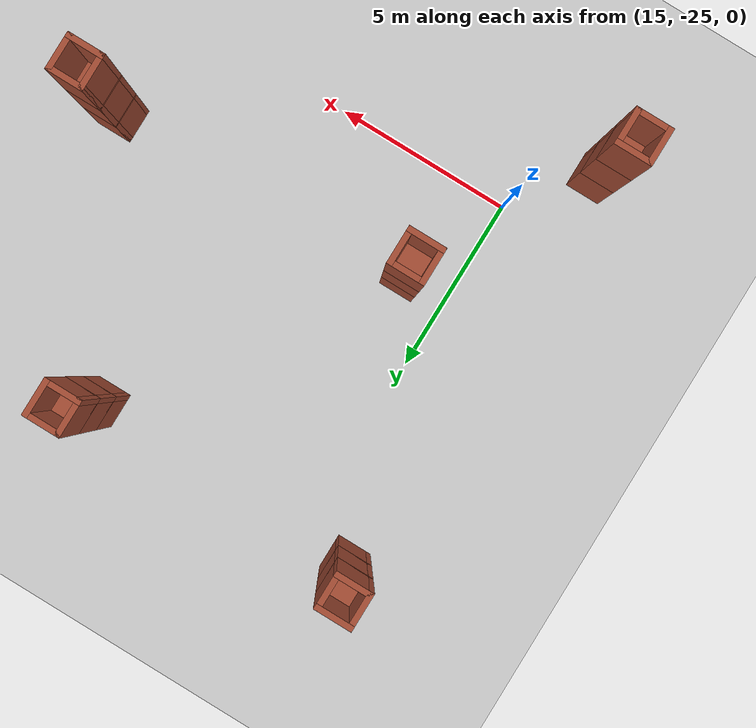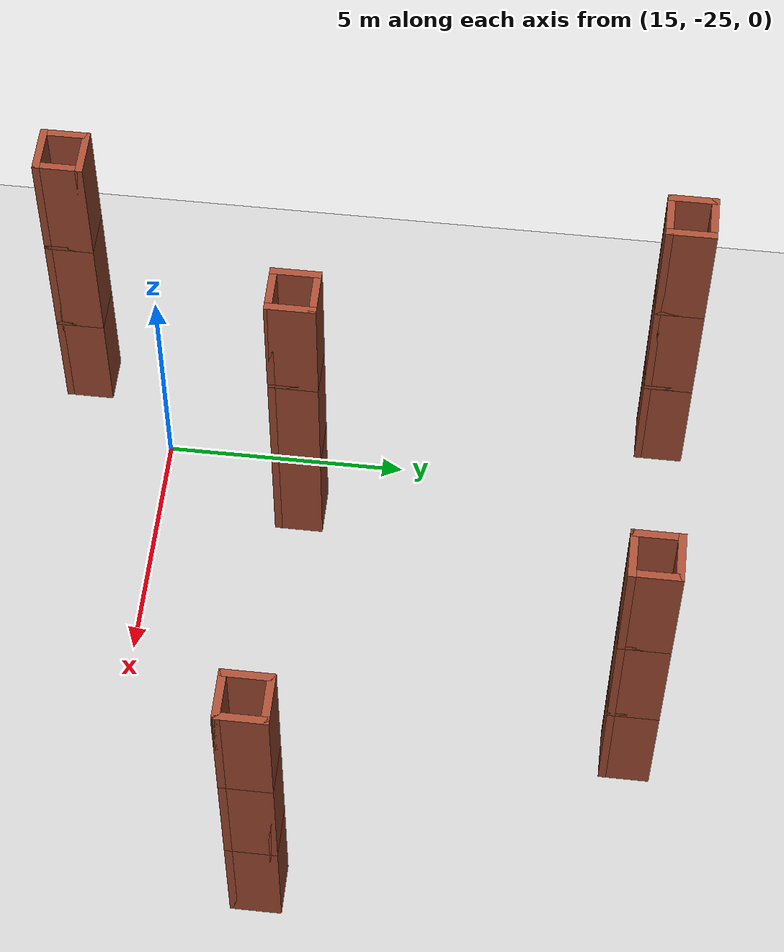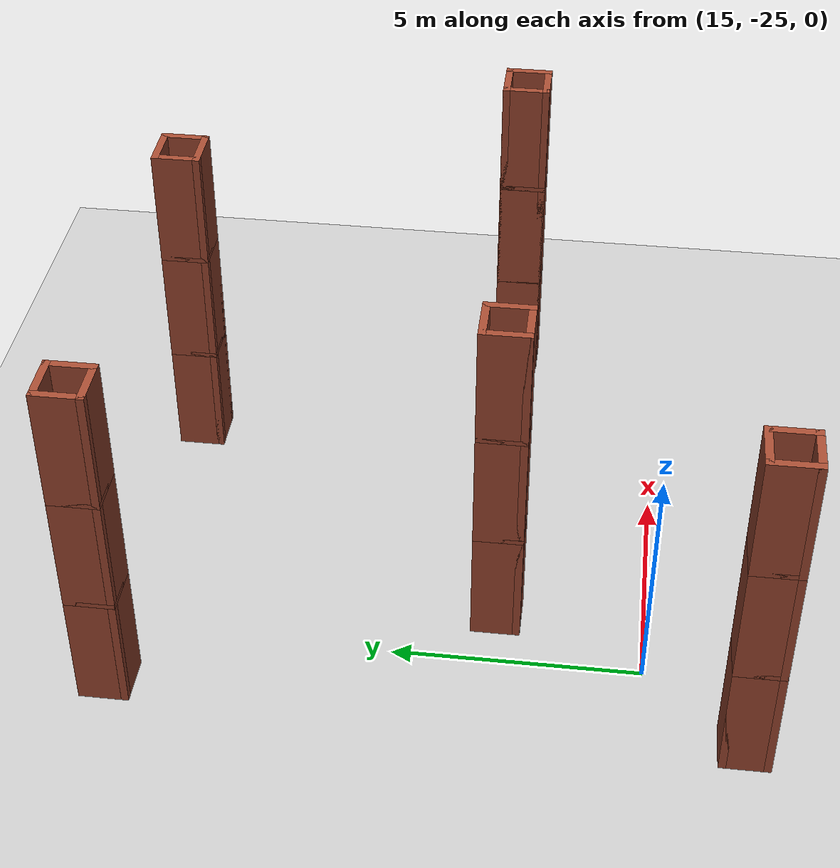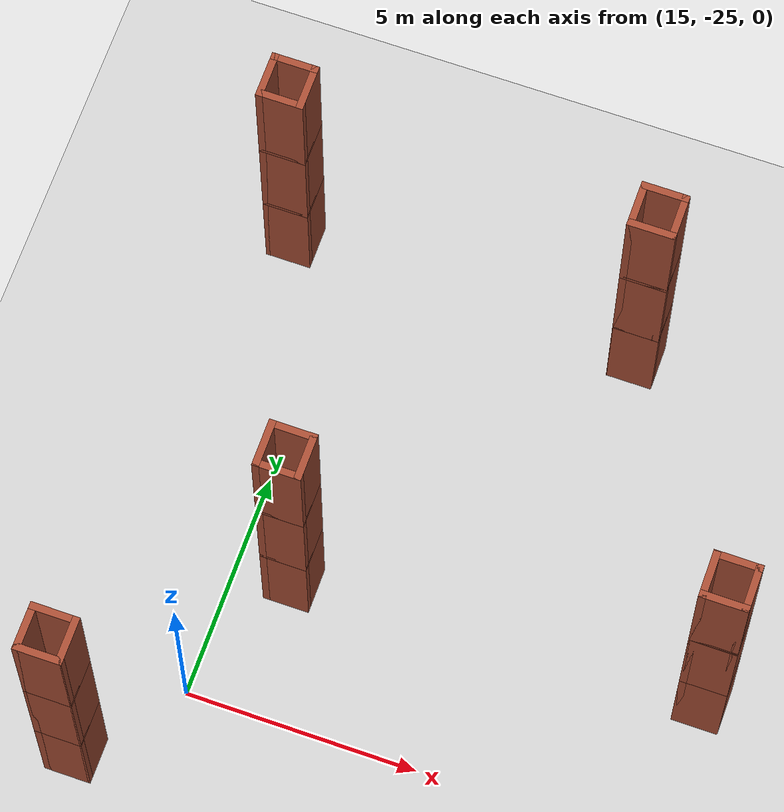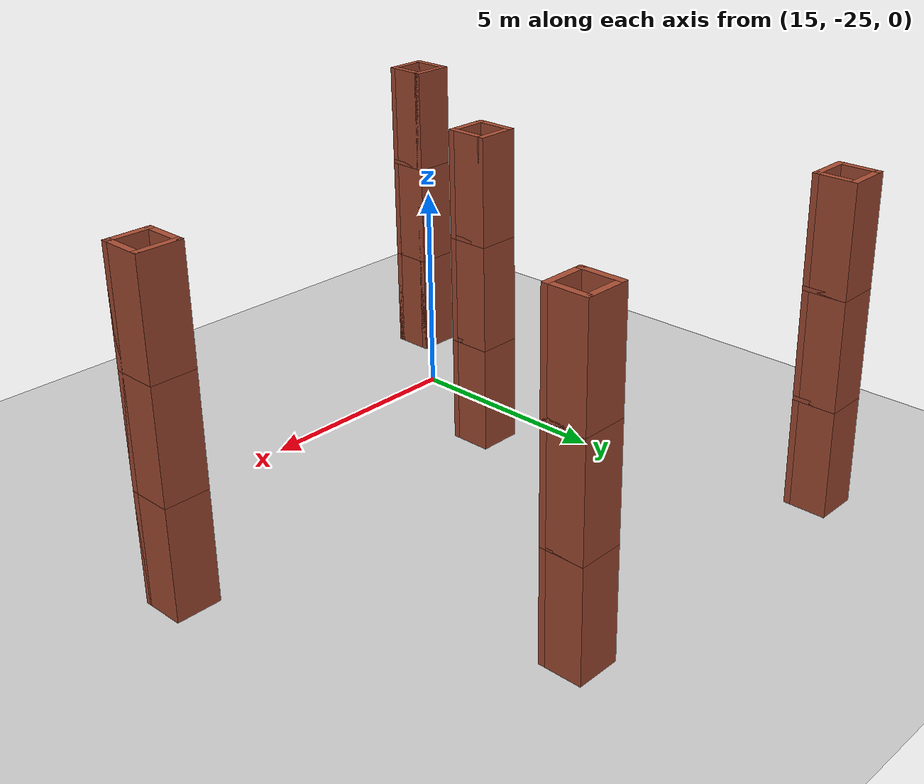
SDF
<sdf version="1.7">
 <world name="default">
  <model name="ground_plane">
   <static>1</static>
   <link name="link">
    <collision name="collision">
     <geometry><plane><normal>0 0 1</normal><size>100 100</size></plane></geometry>
     <surface>
      <contact><collide_bitmask>65535</collide_bitmask></contact>
      <friction><ode><mu>100</mu><mu2>50</mu2></ode></friction>
     </surface>
    </collision>
    <visual name="visual">
     <cast_shadows>0</cast_shadows>
     <geometry><plane><normal>0 0 1</normal><size>100 100</size></plane></geometry>
     <material>
      <script><uri>file://media/materials/scripts/gazebo.material</uri><name>Gazebo/Grey</name></script>
     </material>
    </visual>
   </link>
  </model>
  <model name="wall_model_clone_9">
   <pose>16.5346 -27.5801 0 0 -0 0</pose>
   <link name="Floor_3">
    <collision name="Floor_3_Collision">
     <geometry><box><size>1 1 0.1</size></box></geometry>
     <pose>0 0 0.05 0 -0 0</pose>
    </collision>
    <visual name="Floor_3_Visual">
     <pose>0 0 0.05 0 -0 0</pose>
     <geometry><box><size>1 1 0.1</size></box></geometry>
     <material>
      <script><uri>file://media/materials/scripts/gazebo.material</uri><name>Gazebo/Bricks</name></script>
      <ambient>1 1 1 1</ambient>
     </material>
     <meta><layer>1</layer></meta>
    </visual>
    <pose>-3.21504 0.623396 2.5 0 -0 0</pose>
   </link>
   <link name="Floor_4">
    <collision name="Floor_4_Collision">
     <geometry><box><size>1 1 0.1</size></box></geometry>
     <pose>0 0 0.05 0 -0 0</pose>
    </collision>
    <visual name="Floor_4_Visual">
     <pose>0 0 0.05 0 -0 0</pose>
     <geometry><box><size>1 1 0.1</size></box></geometry>
     <material>
      <script><uri>file://media/materials/scripts/gazebo.material</uri><name>Gazebo/Bricks</name></script>
      <ambient>1 1 1 1</ambient>
     </material>
     <meta><layer>2</layer></meta>
    </visual>
    <pose>-3.21504 0.623396 5 0 -0 0</pose>
   </link>
   <link name="Wall_19">
    <collision name="Wall_19_Collision">
     <geometry><box><size>1 0.15 2.5</size></box></geometry>
     <pose>0 0 1.25 0 -0 0</pose>
    </collision>
    <visual name="Wall_19_Visual">
     <pose>0 0 1.25 0 -0 0</pose>
     <geometry><box><size>1 0.15 2.5</size></box></geometry>
     <material>
      <script><uri>file://media/materials/scripts/gazebo.material</uri><name>Gazebo/Bricks</name></script>
      <ambient>1 1 1 1</ambient>
     </material>
     <meta><layer>0</layer></meta>
    </visual>
    <pose>-3.64004 0.623396 0 0 -0 1.5708</pose>
   </link>
   <link name="Wall_21">
    <collision name="Wall_21_Collision">
     <geometry><box><size>1 0.15 2.5</size></box></geometry>
     <pose>0 0 1.25 0 -0 0</pose>
    </collision>
    <visual name="Wall_21_Visual">
     <pose>0 0 1.25 0 -0 0</pose>
     <geometry><box><size>1 0.15 2.5</size></box></geometry>
     <material>
      <script><uri>file://media/materials/scripts/gazebo.material</uri><name>Gazebo/Bricks</name></script>
      <ambient>1 1 1 1</ambient>
     </material>
     <meta><layer>0</layer></meta>
    </visual>
    <pose>-3.21504 1.0484 0 0 -0 0</pose>
   </link>
   <link name="Wall_22">
    <collision name="Wall_22_Collision">
     <geometry><box><size>1 0.15 2.5</size></box></geometry>
     <pose>0 0 1.25 0 -0 0</pose>
    </collision>
    <visual name="Wall_22_Visual">
     <pose>0 0 1.25 0 -0 0</pose>
     <geometry><box><size>1 0.15 2.5</size></box></geometry>
     <material>
      <script><uri>file://media/materials/scripts/gazebo.material</uri><name>Gazebo/Bricks</name></script>
      <ambient>1 1 1 1</ambient>
     </material>
     <meta><layer>0</layer></meta>
    </visual>
    <pose>-2.79004 0.623396 0 0 -0 -1.5708</pose>
   </link>
   <link name="Wall_23">
    <collision name="Wall_23_Collision">
     <geometry><box><size>1 0.15 2.5</size></box></geometry>
     <pose>0 0 1.25 0 -0 0</pose>
    </collision>
    <visual name="Wall_23_Visual">
     <pose>0 0 1.25 0 -0 0</pose>
     <geometry><box><size>1 0.15 2.5</size></box></geometry>
     <material>
      <script><uri>file://media/materials/scripts/gazebo.material</uri><name>Gazebo/Bricks</name></script>
      <ambient>1 1 1 1</ambient>
     </material>
     <meta><layer>0</layer></meta>
    </visual>
    <pose>-3.21504 0.198396 0 0 -0 3.14159</pose>
   </link>
   <link name="Wall_25">
    <collision name="Wall_25_Collision">
     <geometry><box><size>1 0.15 2.5</size></box></geometry>
     <pose>0 0 1.25 0 -0 0</pose>
    </collision>
    <visual name="Wall_25_Visual">
     <pose>0 0 1.25 0 -0 0</pose>
     <geometry><box><size>1 0.15 2.5</size></box></geometry>
     <material>
      <script><uri>file://media/materials/scripts/gazebo.material</uri><name>Gazebo/Bricks</name></script>
      <ambient>1 1 1 1</ambient>
     </material>
     <meta><layer>1</layer></meta>
    </visual>
    <pose>-3.64004 0.623396 2.5 0 -0 1.5708</pose>
   </link>
   <link name="Wall_26">
    <collision name="Wall_26_Collision">
     <geometry><box><size>1 0.15 2.5</size></box></geometry>
     <pose>0 0 1.25 0 -0 0</pose>
    </collision>
    <visual name="Wall_26_Visual">
     <pose>0 0 1.25 0 -0 0</pose>
     <geometry><box><size>1 0.15 2.5</size></box></geometry>
     <material>
      <script><uri>file://media/materials/scripts/gazebo.material</uri><name>Gazebo/Bricks</name></script>
      <ambient>1 1 1 1</ambient>
     </material>
     <meta><layer>1</layer></meta>
    </visual>
    <pose>-3.21504 1.0484 2.5 0 -0 0</pose>
   </link>
   <link name="Wall_27">
    <collision name="Wall_27_Collision">
     <geometry><box><size>1 0.15 2.5</size></box></geometry>
     <pose>0 0 1.25 0 -0 0</pose>
    </collision>
    <visual name="Wall_27_Visual">
     <pose>0 0 1.25 0 -0 0</pose>
     <geometry><box><size>1 0.15 2.5</size></box></geometry>
     <material>
      <script><uri>file://media/materials/scripts/gazebo.material</uri><name>Gazebo/Bricks</name></script>
      <ambient>1 1 1 1</ambient>
     </material>
     <meta><layer>1</layer></meta>
    </visual>
    <pose>-2.79004 0.623396 2.5 0 -0 -1.5708</pose>
   </link>
   <link name="Wall_28">
    <collision name="Wall_28_Collision">
     <geometry><box><size>1 0.15 2.5</size></box></geometry>
     <pose>0 0 1.25 0 -0 0</pose>
    </collision>
    <visual name="Wall_28_Visual">
     <pose>0 0 1.25 0 -0 0</pose>
     <geometry><box><size>1 0.15 2.5</size></box></geometry>
     <material>
      <script><uri>file://media/materials/scripts/gazebo.material</uri><name>Gazebo/Bricks</name></script>
      <ambient>1 1 1 1</ambient>
     </material>
     <meta><layer>1</layer></meta>
    </visual>
    <pose>-3.21504 0.198396 2.5 0 -0 3.14159</pose>
   </link>
   <link name="Wall_29">
    <collision name="Wall_29_Collision">
     <geometry><box><size>1 0.15 2.5</size></box></geometry>
     <pose>0 0 1.25 0 -0 0</pose>
    </collision>
    <visual name="Wall_29_Visual">
     <pose>0 0 1.25 0 -0 0</pose>
     <geometry><box><size>1 0.15 2.5</size></box></geometry>
     <material>
      <script><uri>file://media/materials/scripts/gazebo.material</uri><name>Gazebo/Bricks</name></script>
      <ambient>1 1 1 1</ambient>
     </material>
     <meta><layer>2</layer></meta>
    </visual>
    <pose>-3.64004 0.623396 5 0 -0 1.5708</pose>
   </link>
   <link name="Wall_30">
    <collision name="Wall_30_Collision">
     <geometry><box><size>1 0.15 2.5</size></box></geometry>
     <pose>0 0 1.25 0 -0 0</pose>
    </collision>
    <visual name="Wall_30_Visual">
     <pose>0 0 1.25 0 -0 0</pose>
     <geometry><box><size>1 0.15 2.5</size></box></geometry>
     <material>
      <script><uri>file://media/materials/scripts/gazebo.material</uri><name>Gazebo/Bricks</name></script>
      <ambient>1 1 1 1</ambient>
     </material>
     <meta><layer>2</layer></meta>
    </visual>
    <pose>-3.21504 1.0484 5 0 -0 0</pose>
   </link>
   <link name="Wall_31">
    <collision name="Wall_31_Collision">
     <geometry><box><size>1 0.15 2.5</size></box></geometry>
     <pose>0 0 1.25 0 -0 0</pose>
    </collision>
    <visual name="Wall_31_Visual">
     <pose>0 0 1.25 0 -0 0</pose>
     <geometry><box><size>1 0.15 2.5</size></box></geometry>
     <material>
      <script><uri>file://media/materials/scripts/gazebo.material</uri><name>Gazebo/Bricks</name></script>
      <ambient>1 1 1 1</ambient>
     </material>
     <meta><layer>2</layer></meta>
    </visual>
    <pose>-2.79004 0.623396 5 0 -0 -1.5708</pose>
   </link>
   <link name="Wall_32">
    <collision name="Wall_32_Collision">
     <geometry><box><size>1 0.15 2.5</size></box></geometry>
     <pose>0 0 1.25 0 -0 0</pose>
    </collision>
    <visual name="Wall_32_Visual">
     <pose>0 0 1.25 0 -0 0</pose>
     <geometry><box><size>1 0.15 2.5</size></box></geometry>
     <material>
      <script><uri>file://media/materials/scripts/gazebo.material</uri><name>Gazebo/Bricks</name></script>
      <ambient>1 1 1 1</ambient>
     </material>
     <meta><layer>2</layer></meta>
    </visual>
    <pose>-3.21504 0.198396 5 0 -0 3.14159</pose>
   </link>
   <static>1</static>
  </model>
  <model name="wall_model_clone_10">
   <pose>19.4753 -22.6273 0 0 -0 0</pose>
   <link name="Floor_3">
    <collision name="Floor_3_Collision">
     <geometry><box><size>1 1 0.1</size></box></geometry>
     <pose>0 0 0.05 0 -0 0</pose>
    </collision>
    <visual name="Floor_3_Visual">
     <pose>0 0 0.05 0 -0 0</pose>
     <geometry><box><size>1 1 0.1</size></box></geometry>
     <material>
      <script><uri>file://media/materials/scripts/gazebo.material</uri><name>Gazebo/Bricks</name></script>
      <ambient>1 1 1 1</ambient>
     </material>
     <meta><layer>1</layer></meta>
    </visual>
    <pose>-3.21504 0.623396 2.5 0 -0 0</pose>
   </link>
   <link name="Floor_4">
    <collision name="Floor_4_Collision">
     <geometry><box><size>1 1 0.1</size></box></geometry>
     <pose>0 0 0.05 0 -0 0</pose>
    </collision>
    <visual name="Floor_4_Visual">
     <pose>0 0 0.05 0 -0 0</pose>
     <geometry><box><size>1 1 0.1</size></box></geometry>
     <material>
      <script><uri>file://media/materials/scripts/gazebo.material</uri><name>Gazebo/Bricks</name></script>
      <ambient>1 1 1 1</ambient>
     </material>
     <meta><layer>2</layer></meta>
    </visual>
    <pose>-3.21504 0.623396 5 0 -0 0</pose>
   </link>
   <link name="Wall_19">
    <collision name="Wall_19_Collision">
     <geometry><box><size>1 0.15 2.5</size></box></geometry>
     <pose>0 0 1.25 0 -0 0</pose>
    </collision>
    <visual name="Wall_19_Visual">
     <pose>0 0 1.25 0 -0 0</pose>
     <geometry><box><size>1 0.15 2.5</size></box></geometry>
     <material>
      <script><uri>file://media/materials/scripts/gazebo.material</uri><name>Gazebo/Bricks</name></script>
      <ambient>1 1 1 1</ambient>
     </material>
     <meta><layer>0</layer></meta>
    </visual>
    <pose>-3.64004 0.623396 0 0 -0 1.5708</pose>
   </link>
   <link name="Wall_21">
    <collision name="Wall_21_Collision">
     <geometry><box><size>1 0.15 2.5</size></box></geometry>
     <pose>0 0 1.25 0 -0 0</pose>
    </collision>
    <visual name="Wall_21_Visual">
     <pose>0 0 1.25 0 -0 0</pose>
     <geometry><box><size>1 0.15 2.5</size></box></geometry>
     <material>
      <script><uri>file://media/materials/scripts/gazebo.material</uri><name>Gazebo/Bricks</name></script>
      <ambient>1 1 1 1</ambient>
     </material>
     <meta><layer>0</layer></meta>
    </visual>
    <pose>-3.21504 1.0484 0 0 -0 0</pose>
   </link>
   <link name="Wall_22">
    <collision name="Wall_22_Collision">
     <geometry><box><size>1 0.15 2.5</size></box></geometry>
     <pose>0 0 1.25 0 -0 0</pose>
    </collision>
    <visual name="Wall_22_Visual">
     <pose>0 0 1.25 0 -0 0</pose>
     <geometry><box><size>1 0.15 2.5</size></box></geometry>
     <material>
      <script><uri>file://media/materials/scripts/gazebo.material</uri><name>Gazebo/Bricks</name></script>
      <ambient>1 1 1 1</ambient>
     </material>
     <meta><layer>0</layer></meta>
    </visual>
    <pose>-2.79004 0.623396 0 0 -0 -1.5708</pose>
   </link>
   <link name="Wall_23">
    <collision name="Wall_23_Collision">
     <geometry><box><size>1 0.15 2.5</size></box></geometry>
     <pose>0 0 1.25 0 -0 0</pose>
    </collision>
    <visual name="Wall_23_Visual">
     <pose>0 0 1.25 0 -0 0</pose>
     <geometry><box><size>1 0.15 2.5</size></box></geometry>
     <material>
      <script><uri>file://media/materials/scripts/gazebo.material</uri><name>Gazebo/Bricks</name></script>
      <ambient>1 1 1 1</ambient>
     </material>
     <meta><layer>0</layer></meta>
    </visual>
    <pose>-3.21504 0.198396 0 0 -0 3.14159</pose>
   </link>
   <link name="Wall_25">
    <collision name="Wall_25_Collision">
     <geometry><box><size>1 0.15 2.5</size></box></geometry>
     <pose>0 0 1.25 0 -0 0</pose>
    </collision>
    <visual name="Wall_25_Visual">
     <pose>0 0 1.25 0 -0 0</pose>
     <geometry><box><size>1 0.15 2.5</size></box></geometry>
     <material>
      <script><uri>file://media/materials/scripts/gazebo.material</uri><name>Gazebo/Bricks</name></script>
      <ambient>1 1 1 1</ambient>
     </material>
     <meta><layer>1</layer></meta>
    </visual>
    <pose>-3.64004 0.623396 2.5 0 -0 1.5708</pose>
   </link>
   <link name="Wall_26">
    <collision name="Wall_26_Collision">
     <geometry><box><size>1 0.15 2.5</size></box></geometry>
     <pose>0 0 1.25 0 -0 0</pose>
    </collision>
    <visual name="Wall_26_Visual">
     <pose>0 0 1.25 0 -0 0</pose>
     <geometry><box><size>1 0.15 2.5</size></box></geometry>
     <material>
      <script><uri>file://media/materials/scripts/gazebo.material</uri><name>Gazebo/Bricks</name></script>
      <ambient>1 1 1 1</ambient>
     </material>
     <meta><layer>1</layer></meta>
    </visual>
    <pose>-3.21504 1.0484 2.5 0 -0 0</pose>
   </link>
   <link name="Wall_27">
    <collision name="Wall_27_Collision">
     <geometry><box><size>1 0.15 2.5</size></box></geometry>
     <pose>0 0 1.25 0 -0 0</pose>
    </collision>
    <visual name="Wall_27_Visual">
     <pose>0 0 1.25 0 -0 0</pose>
     <geometry><box><size>1 0.15 2.5</size></box></geometry>
     <material>
      <script><uri>file://media/materials/scripts/gazebo.material</uri><name>Gazebo/Bricks</name></script>
      <ambient>1 1 1 1</ambient>
     </material>
     <meta><layer>1</layer></meta>
    </visual>
    <pose>-2.79004 0.623396 2.5 0 -0 -1.5708</pose>
   </link>
   <link name="Wall_28">
    <collision name="Wall_28_Collision">
     <geometry><box><size>1 0.15 2.5</size></box></geometry>
     <pose>0 0 1.25 0 -0 0</pose>
    </collision>
    <visual name="Wall_28_Visual">
     <pose>0 0 1.25 0 -0 0</pose>
     <geometry><box><size>1 0.15 2.5</size></box></geometry>
     <material>
      <script><uri>file://media/materials/scripts/gazebo.material</uri><name>Gazebo/Bricks</name></script>
      <ambient>1 1 1 1</ambient>
     </material>
     <meta><layer>1</layer></meta>
    </visual>
    <pose>-3.21504 0.198396 2.5 0 -0 3.14159</pose>
   </link>
   <link name="Wall_29">
    <collision name="Wall_29_Collision">
     <geometry><box><size>1 0.15 2.5</size></box></geometry>
     <pose>0 0 1.25 0 -0 0</pose>
    </collision>
    <visual name="Wall_29_Visual">
     <pose>0 0 1.25 0 -0 0</pose>
     <geometry><box><size>1 0.15 2.5</size></box></geometry>
     <material>
      <script><uri>file://media/materials/scripts/gazebo.material</uri><name>Gazebo/Bricks</name></script>
      <ambient>1 1 1 1</ambient>
     </material>
     <meta><layer>2</layer></meta>
    </visual>
    <pose>-3.64004 0.623396 5 0 -0 1.5708</pose>
   </link>
   <link name="Wall_30">
    <collision name="Wall_30_Collision">
     <geometry><box><size>1 0.15 2.5</size></box></geometry>
     <pose>0 0 1.25 0 -0 0</pose>
    </collision>
    <visual name="Wall_30_Visual">
     <pose>0 0 1.25 0 -0 0</pose>
     <geometry><box><size>1 0.15 2.5</size></box></geometry>
     <material>
      <script><uri>file://media/materials/scripts/gazebo.material</uri><name>Gazebo/Bricks</name></script>
      <ambient>1 1 1 1</ambient>
     </material>
     <meta><layer>2</layer></meta>
    </visual>
    <pose>-3.21504 1.0484 5 0 -0 0</pose>
   </link>
   <link name="Wall_31">
    <collision name="Wall_31_Collision">
     <geometry><box><size>1 0.15 2.5</size></box></geometry>
     <pose>0 0 1.25 0 -0 0</pose>
    </collision>
    <visual name="Wall_31_Visual">
     <pose>0 0 1.25 0 -0 0</pose>
     <geometry><box><size>1 0.15 2.5</size></box></geometry>
     <material>
      <script><uri>file://media/materials/scripts/gazebo.material</uri><name>Gazebo/Bricks</name></script>
      <ambient>1 1 1 1</ambient>
     </material>
     <meta><layer>2</layer></meta>
    </visual>
    <pose>-2.79004 0.623396 5 0 -0 -1.5708</pose>
   </link>
   <link name="Wall_32">
    <collision name="Wall_32_Collision">
     <geometry><box><size>1 0.15 2.5</size></box></geometry>
     <pose>0 0 1.25 0 -0 0</pose>
    </collision>
    <visual name="Wall_32_Visual">
     <pose>0 0 1.25 0 -0 0</pose>
     <geometry><box><size>1 0.15 2.5</size></box></geometry>
     <material>
      <script><uri>file://media/materials/scripts/gazebo.material</uri><name>Gazebo/Bricks</name></script>
      <ambient>1 1 1 1</ambient>
     </material>
     <meta><layer>2</layer></meta>
    </visual>
    <pose>-3.21504 0.198396 5 0 -0 3.14159</pose>
   </link>
   <static>1</static>
  </model>
  <model name="wall_model_clone_18">
   <pose>24.6277 -15.4704 0 0 -0 0</pose>
   <link name="Floor_3">
    <collision name="Floor_3_Collision">
     <geometry><box><size>1 1 0.1</size></box></geometry>
     <pose>0 0 0.05 0 -0 0</pose>
    </collision>
    <visual name="Floor_3_Visual">
     <pose>0 0 0.05 0 -0 0</pose>
     <geometry><box><size>1 1 0.1</size></box></geometry>
     <material>
      <script><uri>file://media/materials/scripts/gazebo.material</uri><name>Gazebo/Bricks</name></script>
      <ambient>1 1 1 1</ambient>
     </material>
     <meta><layer>1</layer></meta>
    </visual>
    <pose>-3.21504 0.623396 2.5 0 -0 0</pose>
   </link>
   <link name="Floor_4">
    <collision name="Floor_4_Collision">
     <geometry><box><size>1 1 0.1</size></box></geometry>
     <pose>0 0 0.05 0 -0 0</pose>
    </collision>
    <visual name="Floor_4_Visual">
     <pose>0 0 0.05 0 -0 0</pose>
     <geometry><box><size>1 1 0.1</size></box></geometry>
     <material>
      <script><uri>file://media/materials/scripts/gazebo.material</uri><name>Gazebo/Bricks</name></script>
      <ambient>1 1 1 1</ambient>
     </material>
     <meta><layer>2</layer></meta>
    </visual>
    <pose>-3.21504 0.623396 5 0 -0 0</pose>
   </link>
   <link name="Wall_19">
    <collision name="Wall_19_Collision">
     <geometry><box><size>1 0.15 2.5</size></box></geometry>
     <pose>0 0 1.25 0 -0 0</pose>
    </collision>
    <visual name="Wall_19_Visual">
     <pose>0 0 1.25 0 -0 0</pose>
     <geometry><box><size>1 0.15 2.5</size></box></geometry>
     <material>
      <script><uri>file://media/materials/scripts/gazebo.material</uri><name>Gazebo/Bricks</name></script>
      <ambient>1 1 1 1</ambient>
     </material>
     <meta><layer>0</layer></meta>
    </visual>
    <pose>-3.64004 0.623396 0 0 -0 1.5708</pose>
   </link>
   <link name="Wall_21">
    <collision name="Wall_21_Collision">
     <geometry><box><size>1 0.15 2.5</size></box></geometry>
     <pose>0 0 1.25 0 -0 0</pose>
    </collision>
    <visual name="Wall_21_Visual">
     <pose>0 0 1.25 0 -0 0</pose>
     <geometry><box><size>1 0.15 2.5</size></box></geometry>
     <material>
      <script><uri>file://media/materials/scripts/gazebo.material</uri><name>Gazebo/Bricks</name></script>
      <ambient>1 1 1 1</ambient>
     </material>
     <meta><layer>0</layer></meta>
    </visual>
    <pose>-3.21504 1.0484 0 0 -0 0</pose>
   </link>
   <link name="Wall_22">
    <collision name="Wall_22_Collision">
     <geometry><box><size>1 0.15 2.5</size></box></geometry>
     <pose>0 0 1.25 0 -0 0</pose>
    </collision>
    <visual name="Wall_22_Visual">
     <pose>0 0 1.25 0 -0 0</pose>
     <geometry><box><size>1 0.15 2.5</size></box></geometry>
     <material>
      <script><uri>file://media/materials/scripts/gazebo.material</uri><name>Gazebo/Bricks</name></script>
      <ambient>1 1 1 1</ambient>
     </material>
     <meta><layer>0</layer></meta>
    </visual>
    <pose>-2.79004 0.623396 0 0 -0 -1.5708</pose>
   </link>
   <link name="Wall_23">
    <collision name="Wall_23_Collision">
     <geometry><box><size>1 0.15 2.5</size></box></geometry>
     <pose>0 0 1.25 0 -0 0</pose>
    </collision>
    <visual name="Wall_23_Visual">
     <pose>0 0 1.25 0 -0 0</pose>
     <geometry><box><size>1 0.15 2.5</size></box></geometry>
     <material>
      <script><uri>file://media/materials/scripts/gazebo.material</uri><name>Gazebo/Bricks</name></script>
      <ambient>1 1 1 1</ambient>
     </material>
     <meta><layer>0</layer></meta>
    </visual>
    <pose>-3.21504 0.198396 0 0 -0 3.14159</pose>
   </link>
   <link name="Wall_25">
    <collision name="Wall_25_Collision">
     <geometry><box><size>1 0.15 2.5</size></box></geometry>
     <pose>0 0 1.25 0 -0 0</pose>
    </collision>
    <visual name="Wall_25_Visual">
     <pose>0 0 1.25 0 -0 0</pose>
     <geometry><box><size>1 0.15 2.5</size></box></geometry>
     <material>
      <script><uri>file://media/materials/scripts/gazebo.material</uri><name>Gazebo/Bricks</name></script>
      <ambient>1 1 1 1</ambient>
     </material>
     <meta><layer>1</layer></meta>
    </visual>
    <pose>-3.64004 0.623396 2.5 0 -0 1.5708</pose>
   </link>
   <link name="Wall_26">
    <collision name="Wall_26_Collision">
     <geometry><box><size>1 0.15 2.5</size></box></geometry>
     <pose>0 0 1.25 0 -0 0</pose>
    </collision>
    <visual name="Wall_26_Visual">
     <pose>0 0 1.25 0 -0 0</pose>
     <geometry><box><size>1 0.15 2.5</size></box></geometry>
     <material>
      <script><uri>file://media/materials/scripts/gazebo.material</uri><name>Gazebo/Bricks</name></script>
      <ambient>1 1 1 1</ambient>
     </material>
     <meta><layer>1</layer></meta>
    </visual>
    <pose>-3.21504 1.0484 2.5 0 -0 0</pose>
   </link>
   <link name="Wall_27">
    <collision name="Wall_27_Collision">
     <geometry><box><size>1 0.15 2.5</size></box></geometry>
     <pose>0 0 1.25 0 -0 0</pose>
    </collision>
    <visual name="Wall_27_Visual">
     <pose>0 0 1.25 0 -0 0</pose>
     <geometry><box><size>1 0.15 2.5</size></box></geometry>
     <material>
      <script><uri>file://media/materials/scripts/gazebo.material</uri><name>Gazebo/Bricks</name></script>
      <ambient>1 1 1 1</ambient>
     </material>
     <meta><layer>1</layer></meta>
    </visual>
    <pose>-2.79004 0.623396 2.5 0 -0 -1.5708</pose>
   </link>
   <link name="Wall_28">
    <collision name="Wall_28_Collision">
     <geometry><box><size>1 0.15 2.5</size></box></geometry>
     <pose>0 0 1.25 0 -0 0</pose>
    </collision>
    <visual name="Wall_28_Visual">
     <pose>0 0 1.25 0 -0 0</pose>
     <geometry><box><size>1 0.15 2.5</size></box></geometry>
     <material>
      <script><uri>file://media/materials/scripts/gazebo.material</uri><name>Gazebo/Bricks</name></script>
      <ambient>1 1 1 1</ambient>
     </material>
     <meta><layer>1</layer></meta>
    </visual>
    <pose>-3.21504 0.198396 2.5 0 -0 3.14159</pose>
   </link>
   <link name="Wall_29">
    <collision name="Wall_29_Collision">
     <geometry><box><size>1 0.15 2.5</size></box></geometry>
     <pose>0 0 1.25 0 -0 0</pose>
    </collision>
    <visual name="Wall_29_Visual">
     <pose>0 0 1.25 0 -0 0</pose>
     <geometry><box><size>1 0.15 2.5</size></box></geometry>
     <material>
      <script><uri>file://media/materials/scripts/gazebo.material</uri><name>Gazebo/Bricks</name></script>
      <ambient>1 1 1 1</ambient>
     </material>
     <meta><layer>2</layer></meta>
    </visual>
    <pose>-3.64004 0.623396 5 0 -0 1.5708</pose>
   </link>
   <link name="Wall_30">
    <collision name="Wall_30_Collision">
     <geometry><box><size>1 0.15 2.5</size></box></geometry>
     <pose>0 0 1.25 0 -0 0</pose>
    </collision>
    <visual name="Wall_30_Visual">
     <pose>0 0 1.25 0 -0 0</pose>
     <geometry><box><size>1 0.15 2.5</size></box></geometry>
     <material>
      <script><uri>file://media/materials/scripts/gazebo.material</uri><name>Gazebo/Bricks</name></script>
      <ambient>1 1 1 1</ambient>
     </material>
     <meta><layer>2</layer></meta>
    </visual>
    <pose>-3.21504 1.0484 5 0 -0 0</pose>
   </link>
   <link name="Wall_31">
    <collision name="Wall_31_Collision">
     <geometry><box><size>1 0.15 2.5</size></box></geometry>
     <pose>0 0 1.25 0 -0 0</pose>
    </collision>
    <visual name="Wall_31_Visual">
     <pose>0 0 1.25 0 -0 0</pose>
     <geometry><box><size>1 0.15 2.5</size></box></geometry>
     <material>
      <script><uri>file://media/materials/scripts/gazebo.material</uri><name>Gazebo/Bricks</name></script>
      <ambient>1 1 1 1</ambient>
     </material>
     <meta><layer>2</layer></meta>
    </visual>
    <pose>-2.79004 0.623396 5 0 -0 -1.5708</pose>
   </link>
   <link name="Wall_32">
    <collision name="Wall_32_Collision">
     <geometry><box><size>1 0.15 2.5</size></box></geometry>
     <pose>0 0 1.25 0 -0 0</pose>
    </collision>
    <visual name="Wall_32_Visual">
     <pose>0 0 1.25 0 -0 0</pose>
     <geometry><box><size>1 0.15 2.5</size></box></geometry>
     <material>
      <script><uri>file://media/materials/scripts/gazebo.material</uri><name>Gazebo/Bricks</name></script>
      <ambient>1 1 1 1</ambient>
     </material>
     <meta><layer>2</layer></meta>
    </visual>
    <pose>-3.21504 0.198396 5 0 -0 3.14159</pose>
   </link>
   <static>1</static>
  </model>
  <model name="wall_model_clone_19">
   <pose>16.8246 -15.2165 0 0 -0 0</pose>
   <link name="Floor_3">
    <collision name="Floor_3_Collision">
     <geometry><box><size>1 1 0.1</size></box></geometry>
     <pose>0 0 0.05 0 -0 0</pose>
    </collision>
    <visual name="Floor_3_Visual">
     <pose>0 0 0.05 0 -0 0</pose>
     <geometry><box><size>1 1 0.1</size></box></geometry>
     <material>
      <script><uri>file://media/materials/scripts/gazebo.material</uri><name>Gazebo/Bricks</name></script>
      <ambient>1 1 1 1</ambient>
     </material>
     <meta><layer>1</layer></meta>
    </visual>
    <pose>-3.21504 0.623396 2.5 0 -0 0</pose>
   </link>
   <link name="Floor_4">
    <collision name="Floor_4_Collision">
     <geometry><box><size>1 1 0.1</size></box></geometry>
     <pose>0 0 0.05 0 -0 0</pose>
    </collision>
    <visual name="Floor_4_Visual">
     <pose>0 0 0.05 0 -0 0</pose>
     <geometry><box><size>1 1 0.1</size></box></geometry>
     <material>
      <script><uri>file://media/materials/scripts/gazebo.material</uri><name>Gazebo/Bricks</name></script>
      <ambient>1 1 1 1</ambient>
     </material>
     <meta><layer>2</layer></meta>
    </visual>
    <pose>-3.21504 0.623396 5 0 -0 0</pose>
   </link>
   <link name="Wall_19">
    <collision name="Wall_19_Collision">
     <geometry><box><size>1 0.15 2.5</size></box></geometry>
     <pose>0 0 1.25 0 -0 0</pose>
    </collision>
    <visual name="Wall_19_Visual">
     <pose>0 0 1.25 0 -0 0</pose>
     <geometry><box><size>1 0.15 2.5</size></box></geometry>
     <material>
      <script><uri>file://media/materials/scripts/gazebo.material</uri><name>Gazebo/Bricks</name></script>
      <ambient>1 1 1 1</ambient>
     </material>
     <meta><layer>0</layer></meta>
    </visual>
    <pose>-3.64004 0.623396 0 0 -0 1.5708</pose>
   </link>
   <link name="Wall_21">
    <collision name="Wall_21_Collision">
     <geometry><box><size>1 0.15 2.5</size></box></geometry>
     <pose>0 0 1.25 0 -0 0</pose>
    </collision>
    <visual name="Wall_21_Visual">
     <pose>0 0 1.25 0 -0 0</pose>
     <geometry><box><size>1 0.15 2.5</size></box></geometry>
     <material>
      <script><uri>file://media/materials/scripts/gazebo.material</uri><name>Gazebo/Bricks</name></script>
      <ambient>1 1 1 1</ambient>
     </material>
     <meta><layer>0</layer></meta>
    </visual>
    <pose>-3.21504 1.0484 0 0 -0 0</pose>
   </link>
   <link name="Wall_22">
    <collision name="Wall_22_Collision">
     <geometry><box><size>1 0.15 2.5</size></box></geometry>
     <pose>0 0 1.25 0 -0 0</pose>
    </collision>
    <visual name="Wall_22_Visual">
     <pose>0 0 1.25 0 -0 0</pose>
     <geometry><box><size>1 0.15 2.5</size></box></geometry>
     <material>
      <script><uri>file://media/materials/scripts/gazebo.material</uri><name>Gazebo/Bricks</name></script>
      <ambient>1 1 1 1</ambient>
     </material>
     <meta><layer>0</layer></meta>
    </visual>
    <pose>-2.79004 0.623396 0 0 -0 -1.5708</pose>
   </link>
   <link name="Wall_23">
    <collision name="Wall_23_Collision">
     <geometry><box><size>1 0.15 2.5</size></box></geometry>
     <pose>0 0 1.25 0 -0 0</pose>
    </collision>
    <visual name="Wall_23_Visual">
     <pose>0 0 1.25 0 -0 0</pose>
     <geometry><box><size>1 0.15 2.5</size></box></geometry>
     <material>
      <script><uri>file://media/materials/scripts/gazebo.material</uri><name>Gazebo/Bricks</name></script>
      <ambient>1 1 1 1</ambient>
     </material>
     <meta><layer>0</layer></meta>
    </visual>
    <pose>-3.21504 0.198396 0 0 -0 3.14159</pose>
   </link>
   <link name="Wall_25">
    <collision name="Wall_25_Collision">
     <geometry><box><size>1 0.15 2.5</size></box></geometry>
     <pose>0 0 1.25 0 -0 0</pose>
    </collision>
    <visual name="Wall_25_Visual">
     <pose>0 0 1.25 0 -0 0</pose>
     <geometry><box><size>1 0.15 2.5</size></box></geometry>
     <material>
      <script><uri>file://media/materials/scripts/gazebo.material</uri><name>Gazebo/Bricks</name></script>
      <ambient>1 1 1 1</ambient>
     </material>
     <meta><layer>1</layer></meta>
    </visual>
    <pose>-3.64004 0.623396 2.5 0 -0 1.5708</pose>
   </link>
   <link name="Wall_26">
    <collision name="Wall_26_Collision">
     <geometry><box><size>1 0.15 2.5</size></box></geometry>
     <pose>0 0 1.25 0 -0 0</pose>
    </collision>
    <visual name="Wall_26_Visual">
     <pose>0 0 1.25 0 -0 0</pose>
     <geometry><box><size>1 0.15 2.5</size></box></geometry>
     <material>
      <script><uri>file://media/materials/scripts/gazebo.material</uri><name>Gazebo/Bricks</name></script>
      <ambient>1 1 1 1</ambient>
     </material>
     <meta><layer>1</layer></meta>
    </visual>
    <pose>-3.21504 1.0484 2.5 0 -0 0</pose>
   </link>
   <link name="Wall_27">
    <collision name="Wall_27_Collision">
     <geometry><box><size>1 0.15 2.5</size></box></geometry>
     <pose>0 0 1.25 0 -0 0</pose>
    </collision>
    <visual name="Wall_27_Visual">
     <pose>0 0 1.25 0 -0 0</pose>
     <geometry><box><size>1 0.15 2.5</size></box></geometry>
     <material>
      <script><uri>file://media/materials/scripts/gazebo.material</uri><name>Gazebo/Bricks</name></script>
      <ambient>1 1 1 1</ambient>
     </material>
     <meta><layer>1</layer></meta>
    </visual>
    <pose>-2.79004 0.623396 2.5 0 -0 -1.5708</pose>
   </link>
   <link name="Wall_28">
    <collision name="Wall_28_Collision">
     <geometry><box><size>1 0.15 2.5</size></box></geometry>
     <pose>0 0 1.25 0 -0 0</pose>
    </collision>
    <visual name="Wall_28_Visual">
     <pose>0 0 1.25 0 -0 0</pose>
     <geometry><box><size>1 0.15 2.5</size></box></geometry>
     <material>
      <script><uri>file://media/materials/scripts/gazebo.material</uri><name>Gazebo/Bricks</name></script>
      <ambient>1 1 1 1</ambient>
     </material>
     <meta><layer>1</layer></meta>
    </visual>
    <pose>-3.21504 0.198396 2.5 0 -0 3.14159</pose>
   </link>
   <link name="Wall_29">
    <collision name="Wall_29_Collision">
     <geometry><box><size>1 0.15 2.5</size></box></geometry>
     <pose>0 0 1.25 0 -0 0</pose>
    </collision>
    <visual name="Wall_29_Visual">
     <pose>0 0 1.25 0 -0 0</pose>
     <geometry><box><size>1 0.15 2.5</size></box></geometry>
     <material>
      <script><uri>file://media/materials/scripts/gazebo.material</uri><name>Gazebo/Bricks</name></script>
      <ambient>1 1 1 1</ambient>
     </material>
     <meta><layer>2</layer></meta>
    </visual>
    <pose>-3.64004 0.623396 5 0 -0 1.5708</pose>
   </link>
   <link name="Wall_30">
    <collision name="Wall_30_Collision">
     <geometry><box><size>1 0.15 2.5</size></box></geometry>
     <pose>0 0 1.25 0 -0 0</pose>
    </collision>
    <visual name="Wall_30_Visual">
     <pose>0 0 1.25 0 -0 0</pose>
     <geometry><box><size>1 0.15 2.5</size></box></geometry>
     <material>
      <script><uri>file://media/materials/scripts/gazebo.material</uri><name>Gazebo/Bricks</name></script>
      <ambient>1 1 1 1</ambient>
     </material>
     <meta><layer>2</layer></meta>
    </visual>
    <pose>-3.21504 1.0484 5 0 -0 0</pose>
   </link>
   <link name="Wall_31">
    <collision name="Wall_31_Collision">
     <geometry><box><size>1 0.15 2.5</size></box></geometry>
     <pose>0 0 1.25 0 -0 0</pose>
    </collision>
    <visual name="Wall_31_Visual">
     <pose>0 0 1.25 0 -0 0</pose>
     <geometry><box><size>1 0.15 2.5</size></box></geometry>
     <material>
      <script><uri>file://media/materials/scripts/gazebo.material</uri><name>Gazebo/Bricks</name></script>
      <ambient>1 1 1 1</ambient>
     </material>
     <meta><layer>2</layer></meta>
    </visual>
    <pose>-2.79004 0.623396 5 0 -0 -1.5708</pose>
   </link>
   <link name="Wall_32">
    <collision name="Wall_32_Collision">
     <geometry><box><size>1 0.15 2.5</size></box></geometry>
     <pose>0 0 1.25 0 -0 0</pose>
    </collision>
    <visual name="Wall_32_Visual">
     <pose>0 0 1.25 0 -0 0</pose>
     <geometry><box><size>1 0.15 2.5</size></box></geometry>
     <material>
      <script><uri>file://media/materials/scripts/gazebo.material</uri><name>Gazebo/Bricks</name></script>
      <ambient>1 1 1 1</ambient>
     </material>
     <meta><layer>2</layer></meta>
    </visual>
    <pose>-3.21504 0.198396 5 0 -0 3.14159</pose>
   </link>
   <static>1</static>
  </model>
  <model name="wall_model_clone_25">
   <pose>28.2825 -22.331 0 0 -0 0</pose>
   <link name="Floor_3">
    <collision name="Floor_3_Collision">
     <geometry><box><size>1 1 0.1</size></box></geometry>
     <pose>0 0 0.05 0 -0 0</pose>
    </collision>
    <visual name="Floor_3_Visual">
     <pose>0 0 0.05 0 -0 0</pose>
     <geometry><box><size>1 1 0.1</size></box></geometry>
     <material>
      <script><uri>file://media/materials/scripts/gazebo.material</uri><name>Gazebo/Bricks</name></script>
      <ambient>1 1 1 1</ambient>
     </material>
     <meta><layer>1</layer></meta>
    </visual>
    <pose>-3.21504 0.623396 2.5 0 -0 0</pose>
   </link>
   <link name="Floor_4">
    <collision name="Floor_4_Collision">
     <geometry><box><size>1 1 0.1</size></box></geometry>
     <pose>0 0 0.05 0 -0 0</pose>
    </collision>
    <visual name="Floor_4_Visual">
     <pose>0 0 0.05 0 -0 0</pose>
     <geometry><box><size>1 1 0.1</size></box></geometry>
     <material>
      <script><uri>file://media/materials/scripts/gazebo.material</uri><name>Gazebo/Bricks</name></script>
      <ambient>1 1 1 1</ambient>
     </material>
     <meta><layer>2</layer></meta>
    </visual>
    <pose>-3.21504 0.623396 5 0 -0 0</pose>
   </link>
   <link name="Wall_19">
    <collision name="Wall_19_Collision">
     <geometry><box><size>1 0.15 2.5</size></box></geometry>
     <pose>0 0 1.25 0 -0 0</pose>
    </collision>
    <visual name="Wall_19_Visual">
     <pose>0 0 1.25 0 -0 0</pose>
     <geometry><box><size>1 0.15 2.5</size></box></geometry>
     <material>
      <script><uri>file://media/materials/scripts/gazebo.material</uri><name>Gazebo/Bricks</name></script>
      <ambient>1 1 1 1</ambient>
     </material>
     <meta><layer>0</layer></meta>
    </visual>
    <pose>-3.64004 0.623396 0 0 -0 1.5708</pose>
   </link>
   <link name="Wall_21">
    <collision name="Wall_21_Collision">
     <geometry><box><size>1 0.15 2.5</size></box></geometry>
     <pose>0 0 1.25 0 -0 0</pose>
    </collision>
    <visual name="Wall_21_Visual">
     <pose>0 0 1.25 0 -0 0</pose>
     <geometry><box><size>1 0.15 2.5</size></box></geometry>
     <material>
      <script><uri>file://media/materials/scripts/gazebo.material</uri><name>Gazebo/Bricks</name></script>
      <ambient>1 1 1 1</ambient>
     </material>
     <meta><layer>0</layer></meta>
    </visual>
    <pose>-3.21504 1.0484 0 0 -0 0</pose>
   </link>
   <link name="Wall_22">
    <collision name="Wall_22_Collision">
     <geometry><box><size>1 0.15 2.5</size></box></geometry>
     <pose>0 0 1.25 0 -0 0</pose>
    </collision>
    <visual name="Wall_22_Visual">
     <pose>0 0 1.25 0 -0 0</pose>
     <geometry><box><size>1 0.15 2.5</size></box></geometry>
     <material>
      <script><uri>file://media/materials/scripts/gazebo.material</uri><name>Gazebo/Bricks</name></script>
      <ambient>1 1 1 1</ambient>
     </material>
     <meta><layer>0</layer></meta>
    </visual>
    <pose>-2.79004 0.623396 0 0 -0 -1.5708</pose>
   </link>
   <link name="Wall_23">
    <collision name="Wall_23_Collision">
     <geometry><box><size>1 0.15 2.5</size></box></geometry>
     <pose>0 0 1.25 0 -0 0</pose>
    </collision>
    <visual name="Wall_23_Visual">
     <pose>0 0 1.25 0 -0 0</pose>
     <geometry><box><size>1 0.15 2.5</size></box></geometry>
     <material>
      <script><uri>file://media/materials/scripts/gazebo.material</uri><name>Gazebo/Bricks</name></script>
      <ambient>1 1 1 1</ambient>
     </material>
     <meta><layer>0</layer></meta>
    </visual>
    <pose>-3.21504 0.198396 0 0 -0 3.14159</pose>
   </link>
   <link name="Wall_25">
    <collision name="Wall_25_Collision">
     <geometry><box><size>1 0.15 2.5</size></box></geometry>
     <pose>0 0 1.25 0 -0 0</pose>
    </collision>
    <visual name="Wall_25_Visual">
     <pose>0 0 1.25 0 -0 0</pose>
     <geometry><box><size>1 0.15 2.5</size></box></geometry>
     <material>
      <script><uri>file://media/materials/scripts/gazebo.material</uri><name>Gazebo/Bricks</name></script>
      <ambient>1 1 1 1</ambient>
     </material>
     <meta><layer>1</layer></meta>
    </visual>
    <pose>-3.64004 0.623396 2.5 0 -0 1.5708</pose>
   </link>
   <link name="Wall_26">
    <collision name="Wall_26_Collision">
     <geometry><box><size>1 0.15 2.5</size></box></geometry>
     <pose>0 0 1.25 0 -0 0</pose>
    </collision>
    <visual name="Wall_26_Visual">
     <pose>0 0 1.25 0 -0 0</pose>
     <geometry><box><size>1 0.15 2.5</size></box></geometry>
     <material>
      <script><uri>file://media/materials/scripts/gazebo.material</uri><name>Gazebo/Bricks</name></script>
      <ambient>1 1 1 1</ambient>
     </material>
     <meta><layer>1</layer></meta>
    </visual>
    <pose>-3.21504 1.0484 2.5 0 -0 0</pose>
   </link>
   <link name="Wall_27">
    <collision name="Wall_27_Collision">
     <geometry><box><size>1 0.15 2.5</size></box></geometry>
     <pose>0 0 1.25 0 -0 0</pose>
    </collision>
    <visual name="Wall_27_Visual">
     <pose>0 0 1.25 0 -0 0</pose>
     <geometry><box><size>1 0.15 2.5</size></box></geometry>
     <material>
      <script><uri>file://media/materials/scripts/gazebo.material</uri><name>Gazebo/Bricks</name></script>
      <ambient>1 1 1 1</ambient>
     </material>
     <meta><layer>1</layer></meta>
    </visual>
    <pose>-2.79004 0.623396 2.5 0 -0 -1.5708</pose>
   </link>
   <link name="Wall_28">
    <collision name="Wall_28_Collision">
     <geometry><box><size>1 0.15 2.5</size></box></geometry>
     <pose>0 0 1.25 0 -0 0</pose>
    </collision>
    <visual name="Wall_28_Visual">
     <pose>0 0 1.25 0 -0 0</pose>
     <geometry><box><size>1 0.15 2.5</size></box></geometry>
     <material>
      <script><uri>file://media/materials/scripts/gazebo.material</uri><name>Gazebo/Bricks</name></script>
      <ambient>1 1 1 1</ambient>
     </material>
     <meta><layer>1</layer></meta>
    </visual>
    <pose>-3.21504 0.198396 2.5 0 -0 3.14159</pose>
   </link>
   <link name="Wall_29">
    <collision name="Wall_29_Collision">
     <geometry><box><size>1 0.15 2.5</size></box></geometry>
     <pose>0 0 1.25 0 -0 0</pose>
    </collision>
    <visual name="Wall_29_Visual">
     <pose>0 0 1.25 0 -0 0</pose>
     <geometry><box><size>1 0.15 2.5</size></box></geometry>
     <material>
      <script><uri>file://media/materials/scripts/gazebo.material</uri><name>Gazebo/Bricks</name></script>
      <ambient>1 1 1 1</ambient>
     </material>
     <meta><layer>2</layer></meta>
    </visual>
    <pose>-3.64004 0.623396 5 0 -0 1.5708</pose>
   </link>
   <link name="Wall_30">
    <collision name="Wall_30_Collision">
     <geometry><box><size>1 0.15 2.5</size></box></geometry>
     <pose>0 0 1.25 0 -0 0</pose>
    </collision>
    <visual name="Wall_30_Visual">
     <pose>0 0 1.25 0 -0 0</pose>
     <geometry><box><size>1 0.15 2.5</size></box></geometry>
     <material>
      <script><uri>file://media/materials/scripts/gazebo.material</uri><name>Gazebo/Bricks</name></script>
      <ambient>1 1 1 1</ambient>
     </material>
     <meta><layer>2</layer></meta>
    </visual>
    <pose>-3.21504 1.0484 5 0 -0 0</pose>
   </link>
   <link name="Wall_31">
    <collision name="Wall_31_Collision">
     <geometry><box><size>1 0.15 2.5</size></box></geometry>
     <pose>0 0 1.25 0 -0 0</pose>
    </collision>
    <visual name="Wall_31_Visual">
     <pose>0 0 1.25 0 -0 0</pose>
     <geometry><box><size>1 0.15 2.5</size></box></geometry>
     <material>
      <script><uri>file://media/materials/scripts/gazebo.material</uri><name>Gazebo/Bricks</name></script>
      <ambient>1 1 1 1</ambient>
     </material>
     <meta><layer>2</layer></meta>
    </visual>
    <pose>-2.79004 0.623396 5 0 -0 -1.5708</pose>
   </link>
   <link name="Wall_32">
    <collision name="Wall_32_Collision">
     <geometry><box><size>1 0.15 2.5</size></box></geometry>
     <pose>0 0 1.25 0 -0 0</pose>
    </collision>
    <visual name="Wall_32_Visual">
     <pose>0 0 1.25 0 -0 0</pose>
     <geometry><box><size>1 0.15 2.5</size></box></geometry>
     <material>
      <script><uri>file://media/materials/scripts/gazebo.material</uri><name>Gazebo/Bricks</name></script>
      <ambient>1 1 1 1</ambient>
     </material>
     <meta><layer>2</layer></meta>
    </visual>
    <pose>-3.21504 0.198396 5 0 -0 3.14159</pose>
   </link>
   <static>1</static>
  </model>
 </world>
</sdf>
